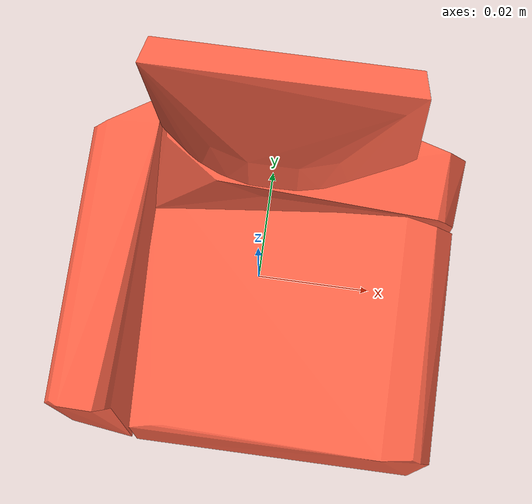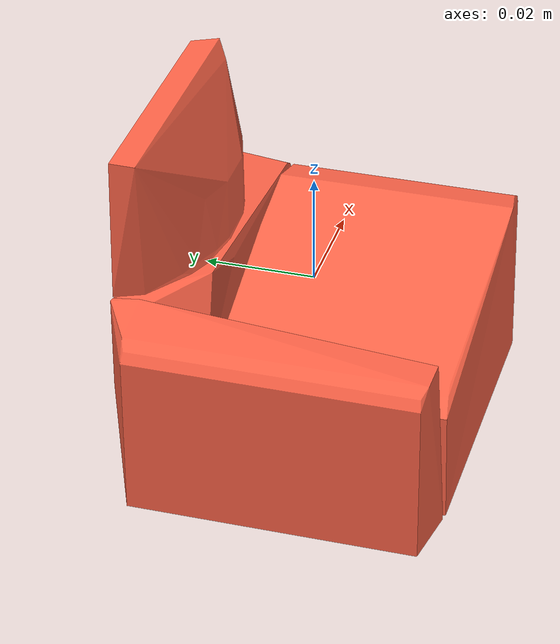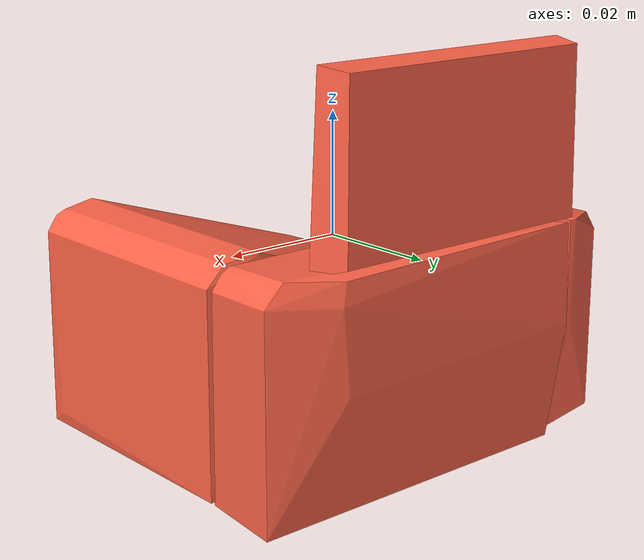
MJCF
<mujoco model="shapenetsem1">
  <asset>
    <mesh file="meshes/shapenetsem1/shapenetsem1_0.stl" name="shapenetsem1_0" scale="1.5 1.5 1.5"/>
    <mesh file="meshes/shapenetsem1/shapenetsem1_1.stl" name="shapenetsem1_1" scale="1.5 1.5 1.5"/>
    <mesh file="meshes/shapenetsem1/shapenetsem1_2.stl" name="shapenetsem1_2" scale="1.5 1.5 1.5"/>
    <mesh file="meshes/shapenetsem1/shapenetsem1_3.stl" name="shapenetsem1_3" scale="1.5 1.5 1.5"/>
    <texture file="../textures/texture1-0.png" type="2d" name="tex-sem1"/>
    <material name="sem1" reflectance="0.7" texrepeat="30 25" texture="tex-sem1" texuniform="true"/>
  </asset>
  <worldbody>
    <body>
      <body name="collision">
        <geom pos="0 0 0" mesh="shapenetsem1_0" type="mesh" solimp="0.998 0.998 0.001" solref="0.001 1" density="100" friction="0.95 0.3 0.1" rgba="1 0.39 0.28 1" group="1" condim="4"/>
        <geom pos="0 0 0" mesh="shapenetsem1_1" type="mesh" solimp="0.998 0.998 0.001" solref="0.001 1" density="100" friction="0.95 0.3 0.1" rgba="1 0.39 0.28 1" group="1" condim="4"/>
        <geom pos="0 0 0" mesh="shapenetsem1_2" type="mesh" solimp="0.998 0.998 0.001" solref="0.001 1" density="100" friction="0.95 0.3 0.1" rgba="1 0.39 0.28 1" group="1" condim="4"/>
        <geom pos="0 0 0" mesh="shapenetsem1_3" type="mesh" solimp="0.998 0.998 0.001" solref="0.001 1" density="100" friction="0.95 0.3 0.1" rgba="1 0.39 0.28 1" group="1" condim="4"/>
      </body>
      <body name="visual">
        <geom pos="0 0 0" mesh="shapenetsem1_0" type="mesh" material="sem1" conaffinity="0" contype="0" group="0" mass="0.0001"/>
        <geom pos="0 0 0" mesh="shapenetsem1_1" type="mesh" material="sem1" conaffinity="0" contype="0" group="0" mass="0.0001"/>
        <geom pos="0 0 0" mesh="shapenetsem1_2" type="mesh" material="sem1" conaffinity="0" contype="0" group="0" mass="0.0001"/>
        <geom pos="0 0 0" mesh="shapenetsem1_3" type="mesh" material="sem1" conaffinity="0" contype="0" group="0" mass="0.0001"/>
      </body>
      <site rgba="0 0 0 0" size="0.005" pos="0 0 -0.06" name="bottom_site"/>
      <site rgba="0 0 0 0" size="0.005" pos="0 0 0.04" name="top_site"/>
      <site rgba="0 0 0 0" size="0.005" pos="0.025 0.025 0" name="horizontal_radius_site"/>
    </body>
  </worldbody>
</mujoco>
